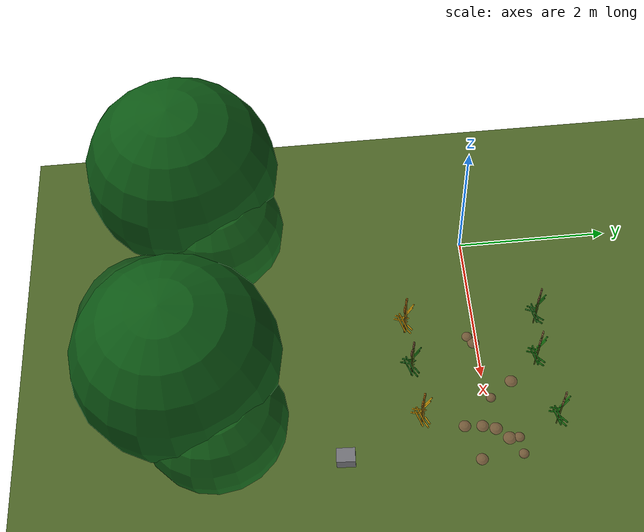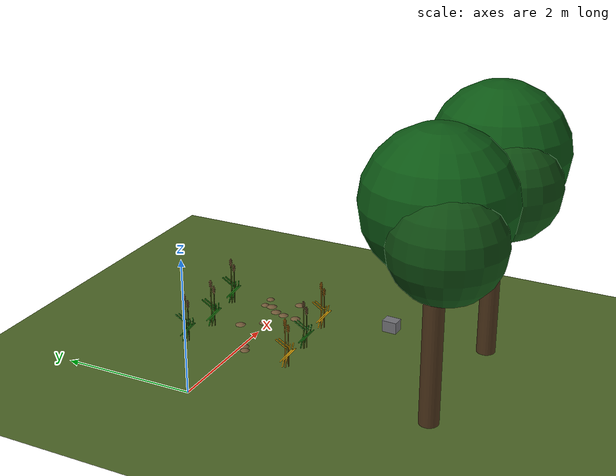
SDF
<sdf version="1.6">
 <world name="default">
  <model name="ground">
   <static>true</static>
   <link name="link">
    <collision name="col"><geometry><plane><normal>0 0 1</normal><size>40 40</size></plane></geometry></collision>
    <visual name="vis">
     <geometry><plane><normal>0 0 1</normal><size>40 40</size></plane></geometry>
     <material><ambient>0.30 0.40 0.15 1</ambient><diffuse>0.30 0.40 0.15 1</diffuse></material>
    </visual>
   </link>
  </model>
  <model name="plant_01">
   <static>true</static>
   <pose>1.22 -0.88 0 0 0 0</pose>
   <link name="link">
    <visual name="stem_0">
     <pose>0.000 0.000 0.320 0.000 0.000 0.000</pose>
     <geometry><cylinder><radius>0.01</radius><length>0.64</length></cylinder></geometry>
     <material><ambient>0.55 0.42 0.08 1</ambient><diffuse>0.55 0.42 0.08 1</diffuse></material>
    </visual>
    <visual name="leaf_0_0">
     <pose>0.055 0.045 0.130 0.000 0.700 0.150</pose>
     <geometry><cylinder><radius>0.009</radius><length>0.3</length></cylinder></geometry>
     <material><ambient>0.92 0.68 0.04 1</ambient><diffuse>0.92 0.68 0.04 1</diffuse></material>
    </visual>
    <visual name="leaf_0_1">
     <pose>-0.055 -0.045 0.230 0.000 -0.720 1.900</pose>
     <geometry><cylinder><radius>0.009</radius><length>0.28</length></cylinder></geometry>
     <material><ambient>0.92 0.68 0.04 1</ambient><diffuse>0.92 0.68 0.04 1</diffuse></material>
    </visual>
    <visual name="leaf_0_2">
     <pose>0.055 -0.045 0.320 0.000 0.780 3.700</pose>
     <geometry><cylinder><radius>0.009</radius><length>0.24</length></cylinder></geometry>
     <material><ambient>0.92 0.68 0.04 1</ambient><diffuse>0.92 0.68 0.04 1</diffuse></material>
    </visual>
    <visual name="leaf_0_3">
     <pose>-0.055 0.045 0.400 0.000 -0.800 5.200</pose>
     <geometry><cylinder><radius>0.009</radius><length>0.2</length></cylinder></geometry>
     <material><ambient>0.92 0.68 0.04 1</ambient><diffuse>0.92 0.68 0.04 1</diffuse></material>
    </visual>
    <visual name="stem_1">
     <pose>0.045 -0.025 0.265 0.000 0.000 0.000</pose>
     <geometry><cylinder><radius>0.008</radius><length>0.53</length></cylinder></geometry>
     <material><ambient>0.55 0.42 0.08 1</ambient><diffuse>0.55 0.42 0.08 1</diffuse></material>
    </visual>
    <visual name="leaf_1_0">
     <pose>0.100 0.020 0.130 0.000 0.700 0.150</pose>
     <geometry><cylinder><radius>0.009</radius><length>0.3</length></cylinder></geometry>
     <material><ambient>0.92 0.68 0.04 1</ambient><diffuse>0.92 0.68 0.04 1</diffuse></material>
    </visual>
    <visual name="leaf_1_1">
     <pose>-0.010 -0.070 0.230 0.000 -0.720 1.900</pose>
     <geometry><cylinder><radius>0.009</radius><length>0.28</length></cylinder></geometry>
     <material><ambient>0.92 0.68 0.04 1</ambient><diffuse>0.92 0.68 0.04 1</diffuse></material>
    </visual>
    <visual name="leaf_1_2">
     <pose>0.100 -0.070 0.320 0.000 0.780 3.700</pose>
     <geometry><cylinder><radius>0.009</radius><length>0.24</length></cylinder></geometry>
     <material><ambient>0.92 0.68 0.04 1</ambient><diffuse>0.92 0.68 0.04 1</diffuse></material>
    </visual>
    <visual name="leaf_1_3">
     <pose>-0.010 0.020 0.400 0.000 -0.800 5.200</pose>
     <geometry><cylinder><radius>0.009</radius><length>0.2</length></cylinder></geometry>
     <material><ambient>0.92 0.68 0.04 1</ambient><diffuse>0.92 0.68 0.04 1</diffuse></material>
    </visual>
    <visual name="ear_axis_0">
     <pose>0.000 0.000 0.715 0.000 0.000 0.000</pose>
     <geometry><cylinder><radius>0.010</radius><length>0.13</length></cylinder></geometry>
     <material><ambient>0.68 0.43 0.08 1</ambient><diffuse>0.68 0.43 0.08 1</diffuse></material>
    </visual>
    <visual name="grain_0_0">
     <pose>0.012 -0.006 0.675 0.000 0.000 0.000</pose>
     <geometry><sphere><radius>0.012</radius></sphere></geometry>
     <material><ambient>0.68 0.43 0.08 1</ambient><diffuse>0.68 0.43 0.08 1</diffuse></material>
    </visual>
    <visual name="grain_0_1">
     <pose>-0.014 0.006 0.691 0.000 0.000 0.000</pose>
     <geometry><sphere><radius>0.012</radius></sphere></geometry>
     <material><ambient>0.68 0.43 0.08 1</ambient><diffuse>0.68 0.43 0.08 1</diffuse></material>
    </visual>
    <visual name="grain_0_2">
     <pose>0.016 -0.006 0.707 0.000 0.000 0.000</pose>
     <geometry><sphere><radius>0.012</radius></sphere></geometry>
     <material><ambient>0.68 0.43 0.08 1</ambient><diffuse>0.68 0.43 0.08 1</diffuse></material>
    </visual>
    <visual name="grain_0_3">
     <pose>-0.012 0.006 0.723 0.000 0.000 0.000</pose>
     <geometry><sphere><radius>0.012</radius></sphere></geometry>
     <material><ambient>0.68 0.43 0.08 1</ambient><diffuse>0.68 0.43 0.08 1</diffuse></material>
    </visual>
    <visual name="grain_0_4">
     <pose>0.014 -0.006 0.739 0.000 0.000 0.000</pose>
     <geometry><sphere><radius>0.012</radius></sphere></geometry>
     <material><ambient>0.68 0.43 0.08 1</ambient><diffuse>0.68 0.43 0.08 1</diffuse></material>
    </visual>
    <visual name="grain_0_5">
     <pose>-0.016 0.006 0.755 0.000 0.000 0.000</pose>
     <geometry><sphere><radius>0.012</radius></sphere></geometry>
     <material><ambient>0.68 0.43 0.08 1</ambient><diffuse>0.68 0.43 0.08 1</diffuse></material>
    </visual>
    <visual name="ear_axis_1">
     <pose>0.045 -0.025 0.605 0.000 0.000 0.000</pose>
     <geometry><cylinder><radius>0.010</radius><length>0.13</length></cylinder></geometry>
     <material><ambient>0.68 0.43 0.08 1</ambient><diffuse>0.68 0.43 0.08 1</diffuse></material>
    </visual>
    <visual name="grain_1_0">
     <pose>0.057 -0.031 0.565 0.000 0.000 0.000</pose>
     <geometry><sphere><radius>0.012</radius></sphere></geometry>
     <material><ambient>0.68 0.43 0.08 1</ambient><diffuse>0.68 0.43 0.08 1</diffuse></material>
    </visual>
    <visual name="grain_1_1">
     <pose>0.031 -0.019 0.581 0.000 0.000 0.000</pose>
     <geometry><sphere><radius>0.012</radius></sphere></geometry>
     <material><ambient>0.68 0.43 0.08 1</ambient><diffuse>0.68 0.43 0.08 1</diffuse></material>
    </visual>
    <visual name="grain_1_2">
     <pose>0.061 -0.031 0.597 0.000 0.000 0.000</pose>
     <geometry><sphere><radius>0.012</radius></sphere></geometry>
     <material><ambient>0.68 0.43 0.08 1</ambient><diffuse>0.68 0.43 0.08 1</diffuse></material>
    </visual>
    <visual name="grain_1_3">
     <pose>0.033 -0.019 0.613 0.000 0.000 0.000</pose>
     <geometry><sphere><radius>0.012</radius></sphere></geometry>
     <material><ambient>0.68 0.43 0.08 1</ambient><diffuse>0.68 0.43 0.08 1</diffuse></material>
    </visual>
    <visual name="grain_1_4">
     <pose>0.059 -0.031 0.629 0.000 0.000 0.000</pose>
     <geometry><sphere><radius>0.012</radius></sphere></geometry>
     <material><ambient>0.68 0.43 0.08 1</ambient><diffuse>0.68 0.43 0.08 1</diffuse></material>
    </visual>
    <visual name="grain_1_5">
     <pose>0.029 -0.019 0.645 0.000 0.000 0.000</pose>
     <geometry><sphere><radius>0.012</radius></sphere></geometry>
     <material><ambient>0.68 0.43 0.08 1</ambient><diffuse>0.68 0.43 0.08 1</diffuse></material>
    </visual>
   </link>
  </model>
  <model name="plant_02">
   <static>true</static>
   <pose>1.84 -0.86 0 0 0 0</pose>
   <link name="link">
    <visual name="stem_0">
     <pose>0.000 0.000 0.320 0.000 0.000 0.000</pose>
     <geometry><cylinder><radius>0.01</radius><length>0.64</length></cylinder></geometry>
     <material><ambient>0.30 0.38 0.08 1</ambient><diffuse>0.30 0.38 0.08 1</diffuse></material>
    </visual>
    <visual name="leaf_0_0">
     <pose>0.055 0.045 0.130 0.000 0.700 0.150</pose>
     <geometry><cylinder><radius>0.009</radius><length>0.3</length></cylinder></geometry>
     <material><ambient>0.08 0.42 0.05 1</ambient><diffuse>0.08 0.42 0.05 1</diffuse></material>
    </visual>
    <visual name="leaf_0_1">
     <pose>-0.055 -0.045 0.230 0.000 -0.720 1.900</pose>
     <geometry><cylinder><radius>0.009</radius><length>0.28</length></cylinder></geometry>
     <material><ambient>0.08 0.42 0.05 1</ambient><diffuse>0.08 0.42 0.05 1</diffuse></material>
    </visual>
    <visual name="leaf_0_2">
     <pose>0.055 -0.045 0.320 0.000 0.780 3.700</pose>
     <geometry><cylinder><radius>0.009</radius><length>0.24</length></cylinder></geometry>
     <material><ambient>0.08 0.42 0.05 1</ambient><diffuse>0.08 0.42 0.05 1</diffuse></material>
    </visual>
    <visual name="leaf_0_3">
     <pose>-0.055 0.045 0.400 0.000 -0.800 5.200</pose>
     <geometry><cylinder><radius>0.009</radius><length>0.2</length></cylinder></geometry>
     <material><ambient>0.08 0.42 0.05 1</ambient><diffuse>0.08 0.42 0.05 1</diffuse></material>
    </visual>
    <visual name="stem_1">
     <pose>0.045 -0.025 0.265 0.000 0.000 0.000</pose>
     <geometry><cylinder><radius>0.008</radius><length>0.53</length></cylinder></geometry>
     <material><ambient>0.30 0.38 0.08 1</ambient><diffuse>0.30 0.38 0.08 1</diffuse></material>
    </visual>
    <visual name="leaf_1_0">
     <pose>0.100 0.020 0.130 0.000 0.700 0.150</pose>
     <geometry><cylinder><radius>0.009</radius><length>0.3</length></cylinder></geometry>
     <material><ambient>0.08 0.42 0.05 1</ambient><diffuse>0.08 0.42 0.05 1</diffuse></material>
    </visual>
    <visual name="leaf_1_1">
     <pose>-0.010 -0.070 0.230 0.000 -0.720 1.900</pose>
     <geometry><cylinder><radius>0.009</radius><length>0.28</length></cylinder></geometry>
     <material><ambient>0.08 0.42 0.05 1</ambient><diffuse>0.08 0.42 0.05 1</diffuse></material>
    </visual>
    <visual name="leaf_1_2">
     <pose>0.100 -0.070 0.320 0.000 0.780 3.700</pose>
     <geometry><cylinder><radius>0.009</radius><length>0.24</length></cylinder></geometry>
     <material><ambient>0.08 0.42 0.05 1</ambient><diffuse>0.08 0.42 0.05 1</diffuse></material>
    </visual>
    <visual name="leaf_1_3">
     <pose>-0.010 0.020 0.400 0.000 -0.800 5.200</pose>
     <geometry><cylinder><radius>0.009</radius><length>0.2</length></cylinder></geometry>
     <material><ambient>0.08 0.42 0.05 1</ambient><diffuse>0.08 0.42 0.05 1</diffuse></material>
    </visual>
    <visual name="ear_axis_0">
     <pose>0.000 0.000 0.715 0.000 0.000 0.000</pose>
     <geometry><cylinder><radius>0.010</radius><length>0.13</length></cylinder></geometry>
     <material><ambient>0.48 0.36 0.22 1</ambient><diffuse>0.48 0.36 0.22 1</diffuse></material>
    </visual>
    <visual name="grain_0_0">
     <pose>0.012 -0.006 0.675 0.000 0.000 0.000</pose>
     <geometry><sphere><radius>0.012</radius></sphere></geometry>
     <material><ambient>0.48 0.36 0.22 1</ambient><diffuse>0.48 0.36 0.22 1</diffuse></material>
    </visual>
    <visual name="grain_0_1">
     <pose>-0.014 0.006 0.691 0.000 0.000 0.000</pose>
     <geometry><sphere><radius>0.012</radius></sphere></geometry>
     <material><ambient>0.48 0.36 0.22 1</ambient><diffuse>0.48 0.36 0.22 1</diffuse></material>
    </visual>
    <visual name="grain_0_2">
     <pose>0.016 -0.006 0.707 0.000 0.000 0.000</pose>
     <geometry><sphere><radius>0.012</radius></sphere></geometry>
     <material><ambient>0.48 0.36 0.22 1</ambient><diffuse>0.48 0.36 0.22 1</diffuse></material>
    </visual>
    <visual name="grain_0_3">
     <pose>-0.012 0.006 0.723 0.000 0.000 0.000</pose>
     <geometry><sphere><radius>0.012</radius></sphere></geometry>
     <material><ambient>0.48 0.36 0.22 1</ambient><diffuse>0.48 0.36 0.22 1</diffuse></material>
    </visual>
    <visual name="grain_0_4">
     <pose>0.014 -0.006 0.739 0.000 0.000 0.000</pose>
     <geometry><sphere><radius>0.012</radius></sphere></geometry>
     <material><ambient>0.48 0.36 0.22 1</ambient><diffuse>0.48 0.36 0.22 1</diffuse></material>
    </visual>
    <visual name="grain_0_5">
     <pose>-0.016 0.006 0.755 0.000 0.000 0.000</pose>
     <geometry><sphere><radius>0.012</radius></sphere></geometry>
     <material><ambient>0.48 0.36 0.22 1</ambient><diffuse>0.48 0.36 0.22 1</diffuse></material>
    </visual>
    <visual name="ear_axis_1">
     <pose>0.045 -0.025 0.605 0.000 0.000 0.000</pose>
     <geometry><cylinder><radius>0.010</radius><length>0.13</length></cylinder></geometry>
     <material><ambient>0.48 0.36 0.22 1</ambient><diffuse>0.48 0.36 0.22 1</diffuse></material>
    </visual>
    <visual name="grain_1_0">
     <pose>0.057 -0.031 0.565 0.000 0.000 0.000</pose>
     <geometry><sphere><radius>0.012</radius></sphere></geometry>
     <material><ambient>0.48 0.36 0.22 1</ambient><diffuse>0.48 0.36 0.22 1</diffuse></material>
    </visual>
    <visual name="grain_1_1">
     <pose>0.031 -0.019 0.581 0.000 0.000 0.000</pose>
     <geometry><sphere><radius>0.012</radius></sphere></geometry>
     <material><ambient>0.48 0.36 0.22 1</ambient><diffuse>0.48 0.36 0.22 1</diffuse></material>
    </visual>
    <visual name="grain_1_2">
     <pose>0.061 -0.031 0.597 0.000 0.000 0.000</pose>
     <geometry><sphere><radius>0.012</radius></sphere></geometry>
     <material><ambient>0.48 0.36 0.22 1</ambient><diffuse>0.48 0.36 0.22 1</diffuse></material>
    </visual>
    <visual name="grain_1_3">
     <pose>0.033 -0.019 0.613 0.000 0.000 0.000</pose>
     <geometry><sphere><radius>0.012</radius></sphere></geometry>
     <material><ambient>0.48 0.36 0.22 1</ambient><diffuse>0.48 0.36 0.22 1</diffuse></material>
    </visual>
    <visual name="grain_1_4">
     <pose>0.059 -0.031 0.629 0.000 0.000 0.000</pose>
     <geometry><sphere><radius>0.012</radius></sphere></geometry>
     <material><ambient>0.48 0.36 0.22 1</ambient><diffuse>0.48 0.36 0.22 1</diffuse></material>
    </visual>
    <visual name="grain_1_5">
     <pose>0.029 -0.019 0.645 0.000 0.000 0.000</pose>
     <geometry><sphere><radius>0.012</radius></sphere></geometry>
     <material><ambient>0.48 0.36 0.22 1</ambient><diffuse>0.48 0.36 0.22 1</diffuse></material>
    </visual>
   </link>
  </model>
  <model name="plant_03">
   <static>true</static>
   <pose>2.53 -0.81 0 0 0 0</pose>
   <link name="link">
    <visual name="stem_0">
     <pose>0.000 0.000 0.320 0.000 0.000 0.000</pose>
     <geometry><cylinder><radius>0.01</radius><length>0.64</length></cylinder></geometry>
     <material><ambient>0.55 0.42 0.08 1</ambient><diffuse>0.55 0.42 0.08 1</diffuse></material>
    </visual>
    <visual name="leaf_0_0">
     <pose>0.055 0.045 0.130 0.000 0.700 0.150</pose>
     <geometry><cylinder><radius>0.009</radius><length>0.3</length></cylinder></geometry>
     <material><ambient>0.92 0.68 0.04 1</ambient><diffuse>0.92 0.68 0.04 1</diffuse></material>
    </visual>
    <visual name="leaf_0_1">
     <pose>-0.055 -0.045 0.230 0.000 -0.720 1.900</pose>
     <geometry><cylinder><radius>0.009</radius><length>0.28</length></cylinder></geometry>
     <material><ambient>0.92 0.68 0.04 1</ambient><diffuse>0.92 0.68 0.04 1</diffuse></material>
    </visual>
    <visual name="leaf_0_2">
     <pose>0.055 -0.045 0.320 0.000 0.780 3.700</pose>
     <geometry><cylinder><radius>0.009</radius><length>0.24</length></cylinder></geometry>
     <material><ambient>0.92 0.68 0.04 1</ambient><diffuse>0.92 0.68 0.04 1</diffuse></material>
    </visual>
    <visual name="leaf_0_3">
     <pose>-0.055 0.045 0.400 0.000 -0.800 5.200</pose>
     <geometry><cylinder><radius>0.009</radius><length>0.2</length></cylinder></geometry>
     <material><ambient>0.92 0.68 0.04 1</ambient><diffuse>0.92 0.68 0.04 1</diffuse></material>
    </visual>
    <visual name="stem_1">
     <pose>0.045 -0.025 0.265 0.000 0.000 0.000</pose>
     <geometry><cylinder><radius>0.008</radius><length>0.53</length></cylinder></geometry>
     <material><ambient>0.55 0.42 0.08 1</ambient><diffuse>0.55 0.42 0.08 1</diffuse></material>
    </visual>
    <visual name="leaf_1_0">
     <pose>0.100 0.020 0.130 0.000 0.700 0.150</pose>
     <geometry><cylinder><radius>0.009</radius><length>0.3</length></cylinder></geometry>
     <material><ambient>0.92 0.68 0.04 1</ambient><diffuse>0.92 0.68 0.04 1</diffuse></material>
    </visual>
    <visual name="leaf_1_1">
     <pose>-0.010 -0.070 0.230 0.000 -0.720 1.900</pose>
     <geometry><cylinder><radius>0.009</radius><length>0.28</length></cylinder></geometry>
     <material><ambient>0.92 0.68 0.04 1</ambient><diffuse>0.92 0.68 0.04 1</diffuse></material>
    </visual>
    <visual name="leaf_1_2">
     <pose>0.100 -0.070 0.320 0.000 0.780 3.700</pose>
     <geometry><cylinder><radius>0.009</radius><length>0.24</length></cylinder></geometry>
     <material><ambient>0.92 0.68 0.04 1</ambient><diffuse>0.92 0.68 0.04 1</diffuse></material>
    </visual>
    <visual name="leaf_1_3">
     <pose>-0.010 0.020 0.400 0.000 -0.800 5.200</pose>
     <geometry><cylinder><radius>0.009</radius><length>0.2</length></cylinder></geometry>
     <material><ambient>0.92 0.68 0.04 1</ambient><diffuse>0.92 0.68 0.04 1</diffuse></material>
    </visual>
    <visual name="ear_axis_0">
     <pose>0.000 0.000 0.715 0.000 0.000 0.000</pose>
     <geometry><cylinder><radius>0.010</radius><length>0.13</length></cylinder></geometry>
     <material><ambient>0.68 0.43 0.08 1</ambient><diffuse>0.68 0.43 0.08 1</diffuse></material>
    </visual>
    <visual name="grain_0_0">
     <pose>0.012 -0.006 0.675 0.000 0.000 0.000</pose>
     <geometry><sphere><radius>0.012</radius></sphere></geometry>
     <material><ambient>0.68 0.43 0.08 1</ambient><diffuse>0.68 0.43 0.08 1</diffuse></material>
    </visual>
    <visual name="grain_0_1">
     <pose>-0.014 0.006 0.691 0.000 0.000 0.000</pose>
     <geometry><sphere><radius>0.012</radius></sphere></geometry>
     <material><ambient>0.68 0.43 0.08 1</ambient><diffuse>0.68 0.43 0.08 1</diffuse></material>
    </visual>
    <visual name="grain_0_2">
     <pose>0.016 -0.006 0.707 0.000 0.000 0.000</pose>
     <geometry><sphere><radius>0.012</radius></sphere></geometry>
     <material><ambient>0.68 0.43 0.08 1</ambient><diffuse>0.68 0.43 0.08 1</diffuse></material>
    </visual>
    <visual name="grain_0_3">
     <pose>-0.012 0.006 0.723 0.000 0.000 0.000</pose>
     <geometry><sphere><radius>0.012</radius></sphere></geometry>
     <material><ambient>0.68 0.43 0.08 1</ambient><diffuse>0.68 0.43 0.08 1</diffuse></material>
    </visual>
    <visual name="grain_0_4">
     <pose>0.014 -0.006 0.739 0.000 0.000 0.000</pose>
     <geometry><sphere><radius>0.012</radius></sphere></geometry>
     <material><ambient>0.68 0.43 0.08 1</ambient><diffuse>0.68 0.43 0.08 1</diffuse></material>
    </visual>
    <visual name="grain_0_5">
     <pose>-0.016 0.006 0.755 0.000 0.000 0.000</pose>
     <geometry><sphere><radius>0.012</radius></sphere></geometry>
     <material><ambient>0.68 0.43 0.08 1</ambient><diffuse>0.68 0.43 0.08 1</diffuse></material>
    </visual>
    <visual name="ear_axis_1">
     <pose>0.045 -0.025 0.605 0.000 0.000 0.000</pose>
     <geometry><cylinder><radius>0.010</radius><length>0.13</length></cylinder></geometry>
     <material><ambient>0.68 0.43 0.08 1</ambient><diffuse>0.68 0.43 0.08 1</diffuse></material>
    </visual>
    <visual name="grain_1_0">
     <pose>0.057 -0.031 0.565 0.000 0.000 0.000</pose>
     <geometry><sphere><radius>0.012</radius></sphere></geometry>
     <material><ambient>0.68 0.43 0.08 1</ambient><diffuse>0.68 0.43 0.08 1</diffuse></material>
    </visual>
    <visual name="grain_1_1">
     <pose>0.031 -0.019 0.581 0.000 0.000 0.000</pose>
     <geometry><sphere><radius>0.012</radius></sphere></geometry>
     <material><ambient>0.68 0.43 0.08 1</ambient><diffuse>0.68 0.43 0.08 1</diffuse></material>
    </visual>
    <visual name="grain_1_2">
     <pose>0.061 -0.031 0.597 0.000 0.000 0.000</pose>
     <geometry><sphere><radius>0.012</radius></sphere></geometry>
     <material><ambient>0.68 0.43 0.08 1</ambient><diffuse>0.68 0.43 0.08 1</diffuse></material>
    </visual>
    <visual name="grain_1_3">
     <pose>0.033 -0.019 0.613 0.000 0.000 0.000</pose>
     <geometry><sphere><radius>0.012</radius></sphere></geometry>
     <material><ambient>0.68 0.43 0.08 1</ambient><diffuse>0.68 0.43 0.08 1</diffuse></material>
    </visual>
    <visual name="grain_1_4">
     <pose>0.059 -0.031 0.629 0.000 0.000 0.000</pose>
     <geometry><sphere><radius>0.012</radius></sphere></geometry>
     <material><ambient>0.68 0.43 0.08 1</ambient><diffuse>0.68 0.43 0.08 1</diffuse></material>
    </visual>
    <visual name="grain_1_5">
     <pose>0.029 -0.019 0.645 0.000 0.000 0.000</pose>
     <geometry><sphere><radius>0.012</radius></sphere></geometry>
     <material><ambient>0.68 0.43 0.08 1</ambient><diffuse>0.68 0.43 0.08 1</diffuse></material>
    </visual>
   </link>
  </model>
  <model name="plant_11">
   <static>true</static>
   <pose>1.25 0.82 0 0 0 0</pose>
   <link name="link">
    <visual name="stem_0">
     <pose>0.000 0.000 0.320 0.000 0.000 0.000</pose>
     <geometry><cylinder><radius>0.01</radius><length>0.64</length></cylinder></geometry>
     <material><ambient>0.30 0.38 0.08 1</ambient><diffuse>0.30 0.38 0.08 1</diffuse></material>
    </visual>
    <visual name="leaf_0_0">
     <pose>0.055 0.045 0.130 0.000 0.700 0.150</pose>
     <geometry><cylinder><radius>0.009</radius><length>0.3</length></cylinder></geometry>
     <material><ambient>0.08 0.42 0.05 1</ambient><diffuse>0.08 0.42 0.05 1</diffuse></material>
    </visual>
    <visual name="leaf_0_1">
     <pose>-0.055 -0.045 0.230 0.000 -0.720 1.900</pose>
     <geometry><cylinder><radius>0.009</radius><length>0.28</length></cylinder></geometry>
     <material><ambient>0.08 0.42 0.05 1</ambient><diffuse>0.08 0.42 0.05 1</diffuse></material>
    </visual>
    <visual name="leaf_0_2">
     <pose>0.055 -0.045 0.320 0.000 0.780 3.700</pose>
     <geometry><cylinder><radius>0.009</radius><length>0.24</length></cylinder></geometry>
     <material><ambient>0.08 0.42 0.05 1</ambient><diffuse>0.08 0.42 0.05 1</diffuse></material>
    </visual>
    <visual name="leaf_0_3">
     <pose>-0.055 0.045 0.400 0.000 -0.800 5.200</pose>
     <geometry><cylinder><radius>0.009</radius><length>0.2</length></cylinder></geometry>
     <material><ambient>0.08 0.42 0.05 1</ambient><diffuse>0.08 0.42 0.05 1</diffuse></material>
    </visual>
    <visual name="stem_1">
     <pose>0.045 -0.025 0.265 0.000 0.000 0.000</pose>
     <geometry><cylinder><radius>0.008</radius><length>0.53</length></cylinder></geometry>
     <material><ambient>0.30 0.38 0.08 1</ambient><diffuse>0.30 0.38 0.08 1</diffuse></material>
    </visual>
    <visual name="leaf_1_0">
     <pose>0.100 0.020 0.130 0.000 0.700 0.150</pose>
     <geometry><cylinder><radius>0.009</radius><length>0.3</length></cylinder></geometry>
     <material><ambient>0.08 0.42 0.05 1</ambient><diffuse>0.08 0.42 0.05 1</diffuse></material>
    </visual>
    <visual name="leaf_1_1">
     <pose>-0.010 -0.070 0.230 0.000 -0.720 1.900</pose>
     <geometry><cylinder><radius>0.009</radius><length>0.28</length></cylinder></geometry>
     <material><ambient>0.08 0.42 0.05 1</ambient><diffuse>0.08 0.42 0.05 1</diffuse></material>
    </visual>
    <visual name="leaf_1_2">
     <pose>0.100 -0.070 0.320 0.000 0.780 3.700</pose>
     <geometry><cylinder><radius>0.009</radius><length>0.24</length></cylinder></geometry>
     <material><ambient>0.08 0.42 0.05 1</ambient><diffuse>0.08 0.42 0.05 1</diffuse></material>
    </visual>
    <visual name="leaf_1_3">
     <pose>-0.010 0.020 0.400 0.000 -0.800 5.200</pose>
     <geometry><cylinder><radius>0.009</radius><length>0.2</length></cylinder></geometry>
     <material><ambient>0.08 0.42 0.05 1</ambient><diffuse>0.08 0.42 0.05 1</diffuse></material>
    </visual>
    <visual name="ear_axis_0">
     <pose>0.000 0.000 0.715 0.000 0.000 0.000</pose>
     <geometry><cylinder><radius>0.010</radius><length>0.13</length></cylinder></geometry>
     <material><ambient>0.48 0.36 0.22 1</ambient><diffuse>0.48 0.36 0.22 1</diffuse></material>
    </visual>
    <visual name="grain_0_0">
     <pose>0.012 -0.006 0.675 0.000 0.000 0.000</pose>
     <geometry><sphere><radius>0.012</radius></sphere></geometry>
     <material><ambient>0.48 0.36 0.22 1</ambient><diffuse>0.48 0.36 0.22 1</diffuse></material>
    </visual>
    <visual name="grain_0_1">
     <pose>-0.014 0.006 0.691 0.000 0.000 0.000</pose>
     <geometry><sphere><radius>0.012</radius></sphere></geometry>
     <material><ambient>0.48 0.36 0.22 1</ambient><diffuse>0.48 0.36 0.22 1</diffuse></material>
    </visual>
    <visual name="grain_0_2">
     <pose>0.016 -0.006 0.707 0.000 0.000 0.000</pose>
     <geometry><sphere><radius>0.012</radius></sphere></geometry>
     <material><ambient>0.48 0.36 0.22 1</ambient><diffuse>0.48 0.36 0.22 1</diffuse></material>
    </visual>
    <visual name="grain_0_3">
     <pose>-0.012 0.006 0.723 0.000 0.000 0.000</pose>
     <geometry><sphere><radius>0.012</radius></sphere></geometry>
     <material><ambient>0.48 0.36 0.22 1</ambient><diffuse>0.48 0.36 0.22 1</diffuse></material>
    </visual>
    <visual name="grain_0_4">
     <pose>0.014 -0.006 0.739 0.000 0.000 0.000</pose>
     <geometry><sphere><radius>0.012</radius></sphere></geometry>
     <material><ambient>0.48 0.36 0.22 1</ambient><diffuse>0.48 0.36 0.22 1</diffuse></material>
    </visual>
    <visual name="grain_0_5">
     <pose>-0.016 0.006 0.755 0.000 0.000 0.000</pose>
     <geometry><sphere><radius>0.012</radius></sphere></geometry>
     <material><ambient>0.48 0.36 0.22 1</ambient><diffuse>0.48 0.36 0.22 1</diffuse></material>
    </visual>
    <visual name="ear_axis_1">
     <pose>0.045 -0.025 0.605 0.000 0.000 0.000</pose>
     <geometry><cylinder><radius>0.010</radius><length>0.13</length></cylinder></geometry>
     <material><ambient>0.48 0.36 0.22 1</ambient><diffuse>0.48 0.36 0.22 1</diffuse></material>
    </visual>
    <visual name="grain_1_0">
     <pose>0.057 -0.031 0.565 0.000 0.000 0.000</pose>
     <geometry><sphere><radius>0.012</radius></sphere></geometry>
     <material><ambient>0.48 0.36 0.22 1</ambient><diffuse>0.48 0.36 0.22 1</diffuse></material>
    </visual>
    <visual name="grain_1_1">
     <pose>0.031 -0.019 0.581 0.000 0.000 0.000</pose>
     <geometry><sphere><radius>0.012</radius></sphere></geometry>
     <material><ambient>0.48 0.36 0.22 1</ambient><diffuse>0.48 0.36 0.22 1</diffuse></material>
    </visual>
    <visual name="grain_1_2">
     <pose>0.061 -0.031 0.597 0.000 0.000 0.000</pose>
     <geometry><sphere><radius>0.012</radius></sphere></geometry>
     <material><ambient>0.48 0.36 0.22 1</ambient><diffuse>0.48 0.36 0.22 1</diffuse></material>
    </visual>
    <visual name="grain_1_3">
     <pose>0.033 -0.019 0.613 0.000 0.000 0.000</pose>
     <geometry><sphere><radius>0.012</radius></sphere></geometry>
     <material><ambient>0.48 0.36 0.22 1</ambient><diffuse>0.48 0.36 0.22 1</diffuse></material>
    </visual>
    <visual name="grain_1_4">
     <pose>0.059 -0.031 0.629 0.000 0.000 0.000</pose>
     <geometry><sphere><radius>0.012</radius></sphere></geometry>
     <material><ambient>0.48 0.36 0.22 1</ambient><diffuse>0.48 0.36 0.22 1</diffuse></material>
    </visual>
    <visual name="grain_1_5">
     <pose>0.029 -0.019 0.645 0.000 0.000 0.000</pose>
     <geometry><sphere><radius>0.012</radius></sphere></geometry>
     <material><ambient>0.48 0.36 0.22 1</ambient><diffuse>0.48 0.36 0.22 1</diffuse></material>
    </visual>
   </link>
  </model>
  <model name="plant_12">
   <static>true</static>
   <pose>1.85 0.73 0 0 0 0</pose>
   <link name="link">
    <visual name="stem_0">
     <pose>0.000 0.000 0.320 0.000 0.000 0.000</pose>
     <geometry><cylinder><radius>0.01</radius><length>0.64</length></cylinder></geometry>
     <material><ambient>0.30 0.38 0.08 1</ambient><diffuse>0.30 0.38 0.08 1</diffuse></material>
    </visual>
    <visual name="leaf_0_0">
     <pose>0.055 0.045 0.130 0.000 0.700 0.150</pose>
     <geometry><cylinder><radius>0.009</radius><length>0.3</length></cylinder></geometry>
     <material><ambient>0.12 0.55 0.08 1</ambient><diffuse>0.12 0.55 0.08 1</diffuse></material>
    </visual>
    <visual name="leaf_0_1">
     <pose>-0.055 -0.045 0.230 0.000 -0.720 1.900</pose>
     <geometry><cylinder><radius>0.009</radius><length>0.28</length></cylinder></geometry>
     <material><ambient>0.12 0.55 0.08 1</ambient><diffuse>0.12 0.55 0.08 1</diffuse></material>
    </visual>
    <visual name="leaf_0_2">
     <pose>0.055 -0.045 0.320 0.000 0.780 3.700</pose>
     <geometry><cylinder><radius>0.009</radius><length>0.24</length></cylinder></geometry>
     <material><ambient>0.12 0.55 0.08 1</ambient><diffuse>0.12 0.55 0.08 1</diffuse></material>
    </visual>
    <visual name="leaf_0_3">
     <pose>-0.055 0.045 0.400 0.000 -0.800 5.200</pose>
     <geometry><cylinder><radius>0.009</radius><length>0.2</length></cylinder></geometry>
     <material><ambient>0.12 0.55 0.08 1</ambient><diffuse>0.12 0.55 0.08 1</diffuse></material>
    </visual>
    <visual name="stem_1">
     <pose>0.045 -0.025 0.265 0.000 0.000 0.000</pose>
     <geometry><cylinder><radius>0.008</radius><length>0.53</length></cylinder></geometry>
     <material><ambient>0.30 0.38 0.08 1</ambient><diffuse>0.30 0.38 0.08 1</diffuse></material>
    </visual>
    <visual name="leaf_1_0">
     <pose>0.100 0.020 0.130 0.000 0.700 0.150</pose>
     <geometry><cylinder><radius>0.009</radius><length>0.3</length></cylinder></geometry>
     <material><ambient>0.12 0.55 0.08 1</ambient><diffuse>0.12 0.55 0.08 1</diffuse></material>
    </visual>
    <visual name="leaf_1_1">
     <pose>-0.010 -0.070 0.230 0.000 -0.720 1.900</pose>
     <geometry><cylinder><radius>0.009</radius><length>0.28</length></cylinder></geometry>
     <material><ambient>0.12 0.55 0.08 1</ambient><diffuse>0.12 0.55 0.08 1</diffuse></material>
    </visual>
    <visual name="leaf_1_2">
     <pose>0.100 -0.070 0.320 0.000 0.780 3.700</pose>
     <geometry><cylinder><radius>0.009</radius><length>0.24</length></cylinder></geometry>
     <material><ambient>0.12 0.55 0.08 1</ambient><diffuse>0.12 0.55 0.08 1</diffuse></material>
    </visual>
    <visual name="leaf_1_3">
     <pose>-0.010 0.020 0.400 0.000 -0.800 5.200</pose>
     <geometry><cylinder><radius>0.009</radius><length>0.2</length></cylinder></geometry>
     <material><ambient>0.12 0.55 0.08 1</ambient><diffuse>0.12 0.55 0.08 1</diffuse></material>
    </visual>
    <visual name="ear_axis_0">
     <pose>0.000 0.000 0.715 0.000 0.000 0.000</pose>
     <geometry><cylinder><radius>0.010</radius><length>0.13</length></cylinder></geometry>
     <material><ambient>0.56 0.43 0.26 1</ambient><diffuse>0.56 0.43 0.26 1</diffuse></material>
    </visual>
    <visual name="grain_0_0">
     <pose>0.012 -0.006 0.675 0.000 0.000 0.000</pose>
     <geometry><sphere><radius>0.012</radius></sphere></geometry>
     <material><ambient>0.56 0.43 0.26 1</ambient><diffuse>0.56 0.43 0.26 1</diffuse></material>
    </visual>
    <visual name="grain_0_1">
     <pose>-0.014 0.006 0.691 0.000 0.000 0.000</pose>
     <geometry><sphere><radius>0.012</radius></sphere></geometry>
     <material><ambient>0.56 0.43 0.26 1</ambient><diffuse>0.56 0.43 0.26 1</diffuse></material>
    </visual>
    <visual name="grain_0_2">
     <pose>0.016 -0.006 0.707 0.000 0.000 0.000</pose>
     <geometry><sphere><radius>0.012</radius></sphere></geometry>
     <material><ambient>0.56 0.43 0.26 1</ambient><diffuse>0.56 0.43 0.26 1</diffuse></material>
    </visual>
    <visual name="grain_0_3">
     <pose>-0.012 0.006 0.723 0.000 0.000 0.000</pose>
     <geometry><sphere><radius>0.012</radius></sphere></geometry>
     <material><ambient>0.56 0.43 0.26 1</ambient><diffuse>0.56 0.43 0.26 1</diffuse></material>
    </visual>
    <visual name="grain_0_4">
     <pose>0.014 -0.006 0.739 0.000 0.000 0.000</pose>
     <geometry><sphere><radius>0.012</radius></sphere></geometry>
     <material><ambient>0.56 0.43 0.26 1</ambient><diffuse>0.56 0.43 0.26 1</diffuse></material>
    </visual>
    <visual name="grain_0_5">
     <pose>-0.016 0.006 0.755 0.000 0.000 0.000</pose>
     <geometry><sphere><radius>0.012</radius></sphere></geometry>
     <material><ambient>0.56 0.43 0.26 1</ambient><diffuse>0.56 0.43 0.26 1</diffuse></material>
    </visual>
    <visual name="ear_axis_1">
     <pose>0.045 -0.025 0.605 0.000 0.000 0.000</pose>
     <geometry><cylinder><radius>0.010</radius><length>0.13</length></cylinder></geometry>
     <material><ambient>0.56 0.43 0.26 1</ambient><diffuse>0.56 0.43 0.26 1</diffuse></material>
    </visual>
    <visual name="grain_1_0">
     <pose>0.057 -0.031 0.565 0.000 0.000 0.000</pose>
     <geometry><sphere><radius>0.012</radius></sphere></geometry>
     <material><ambient>0.56 0.43 0.26 1</ambient><diffuse>0.56 0.43 0.26 1</diffuse></material>
    </visual>
    <visual name="grain_1_1">
     <pose>0.031 -0.019 0.581 0.000 0.000 0.000</pose>
     <geometry><sphere><radius>0.012</radius></sphere></geometry>
     <material><ambient>0.56 0.43 0.26 1</ambient><diffuse>0.56 0.43 0.26 1</diffuse></material>
    </visual>
    <visual name="grain_1_2">
     <pose>0.061 -0.031 0.597 0.000 0.000 0.000</pose>
     <geometry><sphere><radius>0.012</radius></sphere></geometry>
     <material><ambient>0.56 0.43 0.26 1</ambient><diffuse>0.56 0.43 0.26 1</diffuse></material>
    </visual>
    <visual name="grain_1_3">
     <pose>0.033 -0.019 0.613 0.000 0.000 0.000</pose>
     <geometry><sphere><radius>0.012</radius></sphere></geometry>
     <material><ambient>0.56 0.43 0.26 1</ambient><diffuse>0.56 0.43 0.26 1</diffuse></material>
    </visual>
    <visual name="grain_1_4">
     <pose>0.059 -0.031 0.629 0.000 0.000 0.000</pose>
     <geometry><sphere><radius>0.012</radius></sphere></geometry>
     <material><ambient>0.56 0.43 0.26 1</ambient><diffuse>0.56 0.43 0.26 1</diffuse></material>
    </visual>
    <visual name="grain_1_5">
     <pose>0.029 -0.019 0.645 0.000 0.000 0.000</pose>
     <geometry><sphere><radius>0.012</radius></sphere></geometry>
     <material><ambient>0.56 0.43 0.26 1</ambient><diffuse>0.56 0.43 0.26 1</diffuse></material>
    </visual>
   </link>
  </model>
  <model name="plant_13">
   <static>true</static>
   <pose>2.68 0.86 0 0 0 0</pose>
   <link name="link">
    <visual name="stem_0">
     <pose>0.000 0.000 0.320 0.000 0.000 0.000</pose>
     <geometry><cylinder><radius>0.01</radius><length>0.64</length></cylinder></geometry>
     <material><ambient>0.30 0.38 0.08 1</ambient><diffuse>0.30 0.38 0.08 1</diffuse></material>
    </visual>
    <visual name="leaf_0_0">
     <pose>0.055 0.045 0.130 0.000 0.700 0.150</pose>
     <geometry><cylinder><radius>0.009</radius><length>0.3</length></cylinder></geometry>
     <material><ambient>0.12 0.55 0.08 1</ambient><diffuse>0.12 0.55 0.08 1</diffuse></material>
    </visual>
    <visual name="leaf_0_1">
     <pose>-0.055 -0.045 0.230 0.000 -0.720 1.900</pose>
     <geometry><cylinder><radius>0.009</radius><length>0.28</length></cylinder></geometry>
     <material><ambient>0.12 0.55 0.08 1</ambient><diffuse>0.12 0.55 0.08 1</diffuse></material>
    </visual>
    <visual name="leaf_0_2">
     <pose>0.055 -0.045 0.320 0.000 0.780 3.700</pose>
     <geometry><cylinder><radius>0.009</radius><length>0.24</length></cylinder></geometry>
     <material><ambient>0.12 0.55 0.08 1</ambient><diffuse>0.12 0.55 0.08 1</diffuse></material>
    </visual>
    <visual name="leaf_0_3">
     <pose>-0.055 0.045 0.400 0.000 -0.800 5.200</pose>
     <geometry><cylinder><radius>0.009</radius><length>0.2</length></cylinder></geometry>
     <material><ambient>0.12 0.55 0.08 1</ambient><diffuse>0.12 0.55 0.08 1</diffuse></material>
    </visual>
    <visual name="stem_1">
     <pose>0.045 -0.025 0.265 0.000 0.000 0.000</pose>
     <geometry><cylinder><radius>0.008</radius><length>0.53</length></cylinder></geometry>
     <material><ambient>0.30 0.38 0.08 1</ambient><diffuse>0.30 0.38 0.08 1</diffuse></material>
    </visual>
    <visual name="leaf_1_0">
     <pose>0.100 0.020 0.130 0.000 0.700 0.150</pose>
     <geometry><cylinder><radius>0.009</radius><length>0.3</length></cylinder></geometry>
     <material><ambient>0.12 0.55 0.08 1</ambient><diffuse>0.12 0.55 0.08 1</diffuse></material>
    </visual>
    <visual name="leaf_1_1">
     <pose>-0.010 -0.070 0.230 0.000 -0.720 1.900</pose>
     <geometry><cylinder><radius>0.009</radius><length>0.28</length></cylinder></geometry>
     <material><ambient>0.12 0.55 0.08 1</ambient><diffuse>0.12 0.55 0.08 1</diffuse></material>
    </visual>
    <visual name="leaf_1_2">
     <pose>0.100 -0.070 0.320 0.000 0.780 3.700</pose>
     <geometry><cylinder><radius>0.009</radius><length>0.24</length></cylinder></geometry>
     <material><ambient>0.12 0.55 0.08 1</ambient><diffuse>0.12 0.55 0.08 1</diffuse></material>
    </visual>
    <visual name="leaf_1_3">
     <pose>-0.010 0.020 0.400 0.000 -0.800 5.200</pose>
     <geometry><cylinder><radius>0.009</radius><length>0.2</length></cylinder></geometry>
     <material><ambient>0.12 0.55 0.08 1</ambient><diffuse>0.12 0.55 0.08 1</diffuse></material>
    </visual>
    <visual name="ear_axis_0">
     <pose>0.000 0.000 0.715 0.000 0.000 0.000</pose>
     <geometry><cylinder><radius>0.010</radius><length>0.13</length></cylinder></geometry>
     <material><ambient>0.56 0.43 0.26 1</ambient><diffuse>0.56 0.43 0.26 1</diffuse></material>
    </visual>
    <visual name="grain_0_0">
     <pose>0.012 -0.006 0.675 0.000 0.000 0.000</pose>
     <geometry><sphere><radius>0.012</radius></sphere></geometry>
     <material><ambient>0.56 0.43 0.26 1</ambient><diffuse>0.56 0.43 0.26 1</diffuse></material>
    </visual>
    <visual name="grain_0_1">
     <pose>-0.014 0.006 0.691 0.000 0.000 0.000</pose>
     <geometry><sphere><radius>0.012</radius></sphere></geometry>
     <material><ambient>0.56 0.43 0.26 1</ambient><diffuse>0.56 0.43 0.26 1</diffuse></material>
    </visual>
    <visual name="grain_0_2">
     <pose>0.016 -0.006 0.707 0.000 0.000 0.000</pose>
     <geometry><sphere><radius>0.012</radius></sphere></geometry>
     <material><ambient>0.56 0.43 0.26 1</ambient><diffuse>0.56 0.43 0.26 1</diffuse></material>
    </visual>
    <visual name="grain_0_3">
     <pose>-0.012 0.006 0.723 0.000 0.000 0.000</pose>
     <geometry><sphere><radius>0.012</radius></sphere></geometry>
     <material><ambient>0.56 0.43 0.26 1</ambient><diffuse>0.56 0.43 0.26 1</diffuse></material>
    </visual>
    <visual name="grain_0_4">
     <pose>0.014 -0.006 0.739 0.000 0.000 0.000</pose>
     <geometry><sphere><radius>0.012</radius></sphere></geometry>
     <material><ambient>0.56 0.43 0.26 1</ambient><diffuse>0.56 0.43 0.26 1</diffuse></material>
    </visual>
    <visual name="grain_0_5">
     <pose>-0.016 0.006 0.755 0.000 0.000 0.000</pose>
     <geometry><sphere><radius>0.012</radius></sphere></geometry>
     <material><ambient>0.56 0.43 0.26 1</ambient><diffuse>0.56 0.43 0.26 1</diffuse></material>
    </visual>
    <visual name="ear_axis_1">
     <pose>0.045 -0.025 0.605 0.000 0.000 0.000</pose>
     <geometry><cylinder><radius>0.010</radius><length>0.13</length></cylinder></geometry>
     <material><ambient>0.56 0.43 0.26 1</ambient><diffuse>0.56 0.43 0.26 1</diffuse></material>
    </visual>
    <visual name="grain_1_0">
     <pose>0.057 -0.031 0.565 0.000 0.000 0.000</pose>
     <geometry><sphere><radius>0.012</radius></sphere></geometry>
     <material><ambient>0.56 0.43 0.26 1</ambient><diffuse>0.56 0.43 0.26 1</diffuse></material>
    </visual>
    <visual name="grain_1_1">
     <pose>0.031 -0.019 0.581 0.000 0.000 0.000</pose>
     <geometry><sphere><radius>0.012</radius></sphere></geometry>
     <material><ambient>0.56 0.43 0.26 1</ambient><diffuse>0.56 0.43 0.26 1</diffuse></material>
    </visual>
    <visual name="grain_1_2">
     <pose>0.061 -0.031 0.597 0.000 0.000 0.000</pose>
     <geometry><sphere><radius>0.012</radius></sphere></geometry>
     <material><ambient>0.56 0.43 0.26 1</ambient><diffuse>0.56 0.43 0.26 1</diffuse></material>
    </visual>
    <visual name="grain_1_3">
     <pose>0.033 -0.019 0.613 0.000 0.000 0.000</pose>
     <geometry><sphere><radius>0.012</radius></sphere></geometry>
     <material><ambient>0.56 0.43 0.26 1</ambient><diffuse>0.56 0.43 0.26 1</diffuse></material>
    </visual>
    <visual name="grain_1_4">
     <pose>0.059 -0.031 0.629 0.000 0.000 0.000</pose>
     <geometry><sphere><radius>0.012</radius></sphere></geometry>
     <material><ambient>0.56 0.43 0.26 1</ambient><diffuse>0.56 0.43 0.26 1</diffuse></material>
    </visual>
    <visual name="grain_1_5">
     <pose>0.029 -0.019 0.645 0.000 0.000 0.000</pose>
     <geometry><sphere><radius>0.012</radius></sphere></geometry>
     <material><ambient>0.56 0.43 0.26 1</ambient><diffuse>0.56 0.43 0.26 1</diffuse></material>
    </visual>
   </link>
  </model>
  <model name="tree_s1">
   <static>true</static>
   <pose>0.76 -3.25 0 0 0 0</pose>
   <link name="link">
    <collision name="trunk_col">
     <pose>0 0 1.1 0 0 0</pose>
     <geometry><cylinder><radius>0.16</radius><length>2.2</length></cylinder></geometry>
    </collision>
    <visual name="trunk">
     <pose>0 0 1.1 0 0 0</pose>
     <geometry><cylinder><radius>0.14</radius><length>2.2</length></cylinder></geometry>
     <material><ambient>0.30 0.20 0.10 1</ambient><diffuse>0.30 0.20 0.10 1</diffuse></material>
    </visual>
    <visual name="crown1">
     <pose>0 0 3.1 0 0 0</pose>
     <geometry><sphere><radius>1.0</radius></sphere></geometry>
     <material><ambient>0.05 0.35 0.08 1</ambient><diffuse>0.05 0.35 0.08 1</diffuse></material>
    </visual>
    <visual name="crown2">
     <pose>0.5 0.3 2.7 0 0 0</pose>
     <geometry><sphere><radius>0.7</radius></sphere></geometry>
     <material><ambient>0.08 0.40 0.10 1</ambient><diffuse>0.08 0.40 0.10 1</diffuse></material>
    </visual>
    <visual name="crown3">
     <pose>-0.5 -0.3 2.8 0 0 0</pose>
     <geometry><sphere><radius>0.75</radius></sphere></geometry>
     <material><ambient>0.06 0.30 0.07 1</ambient><diffuse>0.06 0.30 0.07 1</diffuse></material>
    </visual>
   </link>
  </model>
  <model name="tree_s2">
   <static>true</static>
   <pose>2.97 -3.30 0 0 0 0</pose>
   <link name="link">
    <collision name="trunk_col">
     <pose>0 0 1.1 0 0 0</pose>
     <geometry><cylinder><radius>0.16</radius><length>2.2</length></cylinder></geometry>
    </collision>
    <visual name="trunk">
     <pose>0 0 1.1 0 0 0</pose>
     <geometry><cylinder><radius>0.14</radius><length>2.2</length></cylinder></geometry>
     <material><ambient>0.30 0.20 0.10 1</ambient><diffuse>0.30 0.20 0.10 1</diffuse></material>
    </visual>
    <visual name="crown1">
     <pose>0 0 3.1 0 0 0</pose>
     <geometry><sphere><radius>1.0</radius></sphere></geometry>
     <material><ambient>0.05 0.35 0.08 1</ambient><diffuse>0.05 0.35 0.08 1</diffuse></material>
    </visual>
    <visual name="crown2">
     <pose>0.5 0.3 2.7 0 0 0</pose>
     <geometry><sphere><radius>0.7</radius></sphere></geometry>
     <material><ambient>0.08 0.40 0.10 1</ambient><diffuse>0.08 0.40 0.10 1</diffuse></material>
    </visual>
    <visual name="crown3">
     <pose>-0.5 -0.3 2.8 0 0 0</pose>
     <geometry><sphere><radius>0.75</radius></sphere></geometry>
     <material><ambient>0.06 0.30 0.07 1</ambient><diffuse>0.06 0.30 0.07 1</diffuse></material>
    </visual>
   </link>
  </model>
  <model name="rock_02">
   <static>true</static>
   <pose>2.95 -1.80 0.091 0 0 1.52</pose>
   <link name="link">
    <collision name="c"><geometry><box><size>0.23 0.18 0.182</size></box></geometry></collision>
    <visual name="v">
     <geometry><box><size>0.23 0.18 0.182</size></box></geometry>
     <material><ambient>0.45 0.45 0.47 1</ambient><diffuse>0.45 0.45 0.47 1</diffuse></material>
    </visual>
   </link>
  </model>
  <model name="bump_1_03">
   <static>true</static>
   <pose>1.41 -0.10 -0.084 0 0 0</pose>
   <link name="link">
    <collision name="c"><geometry><sphere><radius>0.104</radius></sphere></geometry></collision>
    <visual name="v">
     <geometry><sphere><radius>0.104</radius></sphere></geometry>
     <material><ambient>0.45 0.35 0.22 1</ambient><diffuse>0.45 0.35 0.22 1</diffuse></material>
    </visual>
   </link>
  </model>
  <model name="bump_1_04">
   <static>true</static>
   <pose>2.86 0.23 -0.119 0 0 0</pose>
   <link name="link">
    <collision name="c"><geometry><sphere><radius>0.139</radius></sphere></geometry></collision>
    <visual name="v">
     <geometry><sphere><radius>0.139</radius></sphere></geometry>
     <material><ambient>0.45 0.35 0.22 1</ambient><diffuse>0.45 0.35 0.22 1</diffuse></material>
    </visual>
   </link>
  </model>
  <model name="bump_1_07">
   <static>true</static>
   <pose>3.08 0.37 -0.069 0 0 0</pose>
   <link name="link">
    <collision name="c"><geometry><sphere><radius>0.089</radius></sphere></geometry></collision>
    <visual name="v">
     <geometry><sphere><radius>0.089</radius></sphere></geometry>
     <material><ambient>0.45 0.35 0.22 1</ambient><diffuse>0.45 0.35 0.22 1</diffuse></material>
    </visual>
   </link>
  </model>
  <model name="bump_1_10">
   <static>true</static>
   <pose>2.10 0.37 -0.111 0 0 0</pose>
   <link name="link">
    <collision name="c"><geometry><sphere><radius>0.131</radius></sphere></geometry></collision>
    <visual name="v">
     <geometry><sphere><radius>0.131</radius></sphere></geometry>
     <material><ambient>0.45 0.35 0.22 1</ambient><diffuse>0.45 0.35 0.22 1</diffuse></material>
    </visual>
   </link>
  </model>
  <model name="bump_1_11">
   <static>true</static>
   <pose>2.30 0.08 -0.065 0 0 0</pose>
   <link name="link">
    <collision name="c"><geometry><sphere><radius>0.085</radius></sphere></geometry></collision>
    <visual name="v">
     <geometry><sphere><radius>0.085</radius></sphere></geometry>
     <material><ambient>0.45 0.35 0.22 1</ambient><diffuse>0.45 0.35 0.22 1</diffuse></material>
    </visual>
   </link>
  </model>
  <model name="bump_1_12">
   <static>true</static>
   <pose>2.65 -0.30 -0.101 0 0 0</pose>
   <link name="link">
    <collision name="c"><geometry><sphere><radius>0.121</radius></sphere></geometry></collision>
    <visual name="v">
     <geometry><sphere><radius>0.121</radius></sphere></geometry>
     <material><ambient>0.45 0.35 0.22 1</ambient><diffuse>0.45 0.35 0.22 1</diffuse></material>
    </visual>
   </link>
  </model>
  <model name="bump_1_13">
   <static>true</static>
   <pose>2.72 0.08 -0.113 0 0 0</pose>
   <link name="link">
    <collision name="c"><geometry><sphere><radius>0.133</radius></sphere></geometry></collision>
    <visual name="v">
     <geometry><sphere><radius>0.133</radius></sphere></geometry>
     <material><ambient>0.45 0.35 0.22 1</ambient><diffuse>0.45 0.35 0.22 1</diffuse></material>
    </visual>
   </link>
  </model>
  <model name="bump_1_16">
   <static>true</static>
   <pose>2.67 -0.08 -0.103 0 0 0</pose>
   <link name="link">
    <collision name="c"><geometry><sphere><radius>0.123</radius></sphere></geometry></collision>
    <visual name="v">
     <geometry><sphere><radius>0.123</radius></sphere></geometry>
     <material><ambient>0.45 0.35 0.22 1</ambient><diffuse>0.45 0.35 0.22 1</diffuse></material>
    </visual>
   </link>
  </model>
  <model name="bump_1_17">
   <static>true</static>
   <pose>3.10 -0.15 -0.100 0 0 0</pose>
   <link name="link">
    <collision name="c"><geometry><sphere><radius>0.120</radius></sphere></geometry></collision>
    <visual name="v">
     <geometry><sphere><radius>0.120</radius></sphere></geometry>
     <material><ambient>0.45 0.35 0.22 1</ambient><diffuse>0.45 0.35 0.22 1</diffuse></material>
    </visual>
   </link>
  </model>
  <model name="bump_1_18">
   <static>true</static>
   <pose>1.51 -0.03 -0.105 0 0 0</pose>
   <link name="link">
    <collision name="c"><geometry><sphere><radius>0.125</radius></sphere></geometry></collision>
    <visual name="v">
     <geometry><sphere><radius>0.125</radius></sphere></geometry>
     <material><ambient>0.45 0.35 0.22 1</ambient><diffuse>0.45 0.35 0.22 1</diffuse></material>
    </visual>
   </link>
  </model>
  <model name="bump_1_20">
   <static>true</static>
   <pose>2.86 0.35 -0.073 0 0 0</pose>
   <link name="link">
    <collision name="c"><geometry><sphere><radius>0.093</radius></sphere></geometry></collision>
    <visual name="v">
     <geometry><sphere><radius>0.093</radius></sphere></geometry>
     <material><ambient>0.45 0.35 0.22 1</ambient><diffuse>0.45 0.35 0.22 1</diffuse></material>
    </visual>
   </link>
  </model>
 </world>
</sdf>
